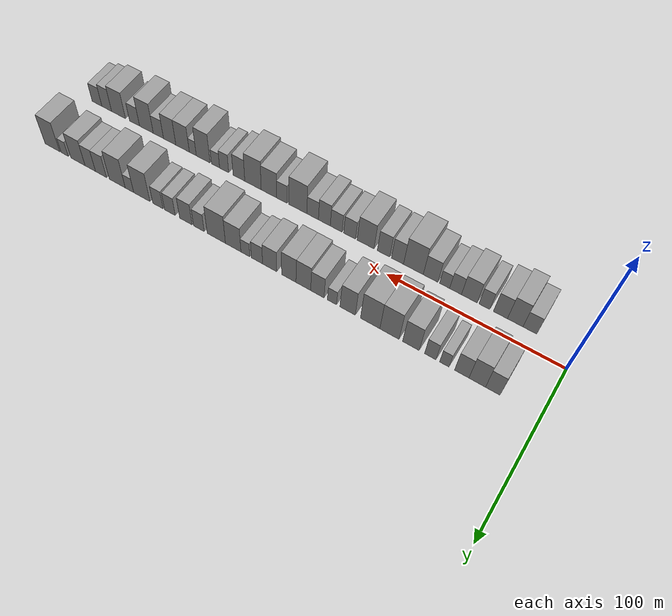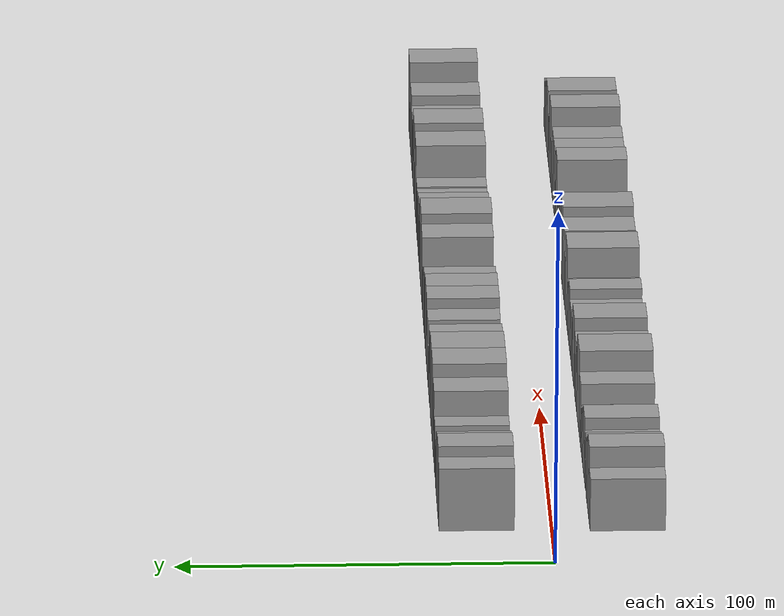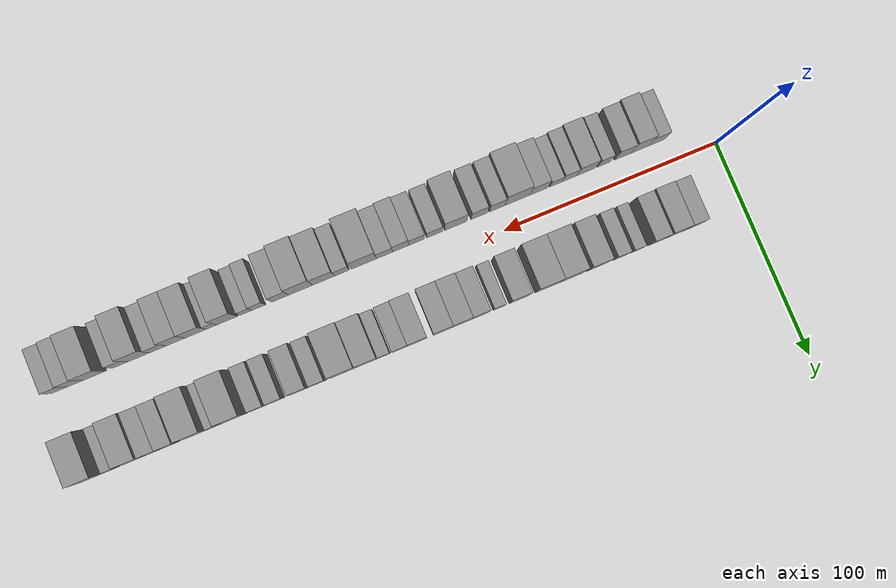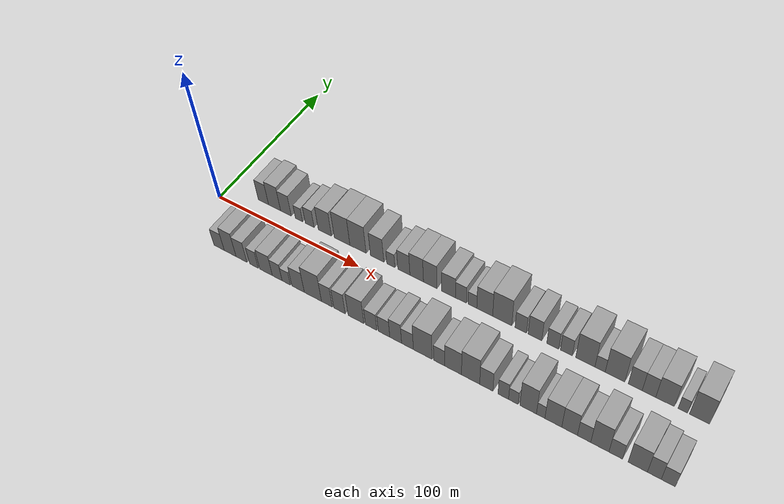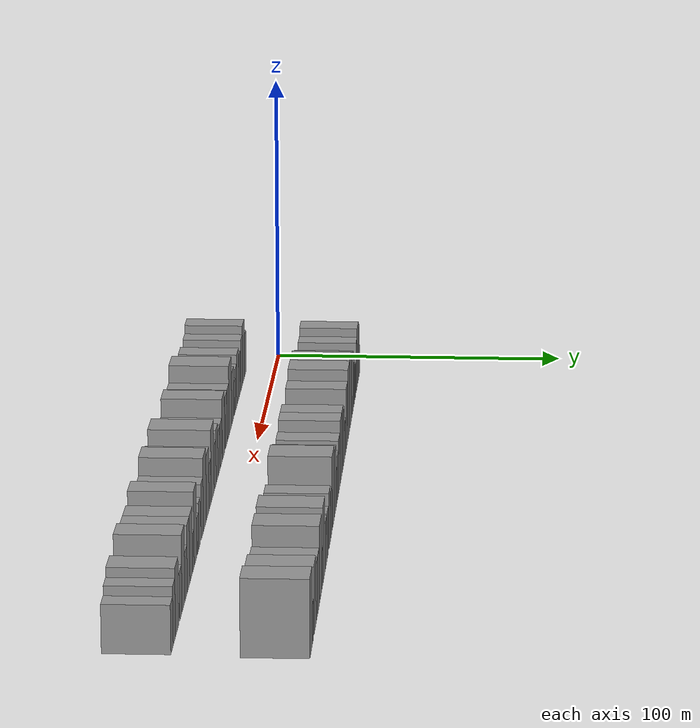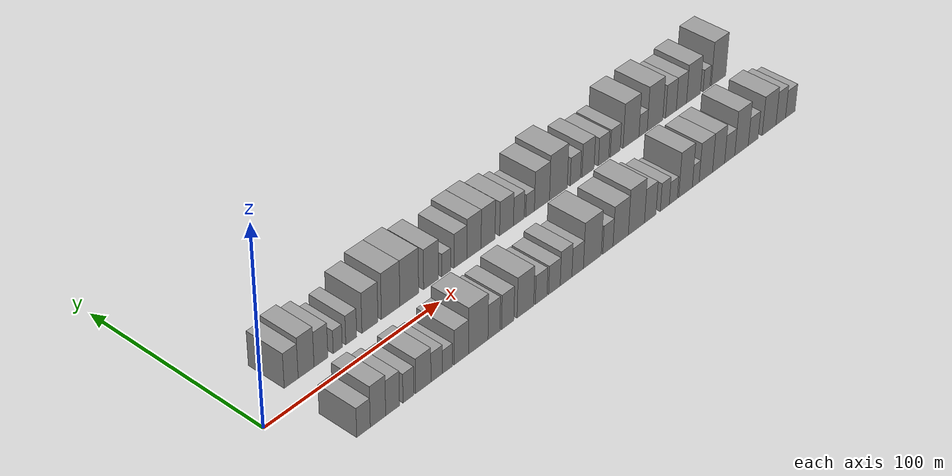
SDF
<sdf version="1.6">
 <world name="default">
  <scene>
   <sky><clouds><speed>12</speed></clouds></sky>
   <ambient>0.4 0.4 0.4 1</ambient>
   <background>0.7 0.7 0.7 1</background>
   <shadows>1</shadows>
  </scene>
  <gravity>0 0 -9.8066</gravity>
  <magnetic_field>6e-06 2.3e-05 -4.2e-05</magnetic_field>
  <physics default="0" name="default_physics" type="ode">
   <ode>
    <solver>
     <type>quick</type>
     <iters>10</iters>
     <sor>1.0</sor>
     <use_dynamic_moi_rescaling>0</use_dynamic_moi_rescaling>
    </solver>
    <constraints>
     <cfm>0</cfm>
     <erp>0.2</erp>
     <contact_max_correcting_vel>100</contact_max_correcting_vel>
     <contact_surface_layer>0.001</contact_surface_layer>
    </constraints>
   </ode>
   <max_step_size>0.004</max_step_size>
   <real_time_factor>1</real_time_factor>
   <real_time_update_rate>250</real_time_update_rate>
  </physics>
  <light name="sun" type="directional">
   <pose>0 0 10 0 0 0</pose>
   <diffuse>0.8 0.8 0.8 1</diffuse>
   <specular>0.2 0.2 0.2 1</specular>
   <attenuation>
    <range>1000</range>
    <constant>0.9</constant>
    <linear>0.01</linear>
    <quadratic>0.001</quadratic>
   </attenuation>
   <direction>-0.5 0.1 -0.9</direction>
  </light>
  <model name="building_1">
   <static>1</static>
   <pose>24.8415 20.0000 0 0.000000 0.000000 1.570796</pose>
   <link name="link">
    <pose>0 0 9.00 0 0 0</pose>
    <collision name="collision"><geometry><box><size>20.0000 7.6830 18.0000</size></box></geometry></collision>
    <visual name="visual">
     <cast_shadows>0</cast_shadows>
     <geometry><box><size>20.0000 7.6830 18.0000</size></box></geometry>
     <material>
      <script>
       <uri>model://grey_wall/materials/scripts</uri>
       <uri>model://grey_wall/materials/textures</uri>
       <name>vrc/grey_wall</name>
      </script>
     </material>
    </visual>
   </link>
  </model>
  <model name="building_2">
   <static>1</static>
   <pose>33.1000 20.0000 0 0.000000 0.000000 1.570796</pose>
   <link name="link">
    <pose>0 0 10.50 0 0 0</pose>
    <collision name="collision"><geometry><box><size>20.0000 8.8340 21.0000</size></box></geometry></collision>
    <visual name="visual">
     <cast_shadows>0</cast_shadows>
     <geometry><box><size>20.0000 8.8340 21.0000</size></box></geometry>
     <material>
      <script>
       <uri>model://grey_wall/materials/scripts</uri>
       <uri>model://grey_wall/materials/textures</uri>
       <name>vrc/grey_wall</name>
      </script>
     </material>
    </visual>
   </link>
  </model>
  <model name="building_3">
   <static>1</static>
   <pose>41.4182 20.0000 0 0.000000 0.000000 1.570796</pose>
   <link name="link">
    <pose>0 0 9.00 0 0 0</pose>
    <collision name="collision"><geometry><box><size>20.0000 7.8023 18.0000</size></box></geometry></collision>
    <visual name="visual">
     <cast_shadows>0</cast_shadows>
     <geometry><box><size>20.0000 7.8023 18.0000</size></box></geometry>
     <material>
      <script>
       <uri>model://grey_wall/materials/scripts</uri>
       <uri>model://grey_wall/materials/textures</uri>
       <name>vrc/grey_wall</name>
      </script>
     </material>
    </visual>
   </link>
  </model>
  <model name="building_4">
   <static>1</static>
   <pose>50.8938 20.0000 0 0.000000 0.000000 1.570796</pose>
   <link name="link">
    <pose>0 0 6.00 0 0 0</pose>
    <collision name="collision"><geometry><box><size>20.0000 5.1490 12.0000</size></box></geometry></collision>
    <visual name="visual">
     <cast_shadows>0</cast_shadows>
     <geometry><box><size>20.0000 5.1490 12.0000</size></box></geometry>
     <material>
      <script>
       <uri>model://grey_wall/materials/scripts</uri>
       <uri>model://grey_wall/materials/textures</uri>
       <name>vrc/grey_wall</name>
      </script>
     </material>
    </visual>
   </link>
  </model>
  <model name="building_5">
   <static>1</static>
   <pose>58.6183 20.0000 0 0.000000 0.000000 1.570796</pose>
   <link name="link">
    <pose>0 0 7.50 0 0 0</pose>
    <collision name="collision"><geometry><box><size>20.0000 6.2999 15.0000</size></box></geometry></collision>
    <visual name="visual">
     <cast_shadows>0</cast_shadows>
     <geometry><box><size>20.0000 6.2999 15.0000</size></box></geometry>
     <material>
      <script>
       <uri>model://grey_wall/materials/scripts</uri>
       <uri>model://grey_wall/materials/textures</uri>
       <name>vrc/grey_wall</name>
      </script>
     </material>
    </visual>
   </link>
  </model>
  <model name="building_6">
   <static>1</static>
   <pose>69.4453 20.0000 0 0.000000 0.000000 1.570796</pose>
   <link name="link">
    <pose>0 0 10.50 0 0 0</pose>
    <collision name="collision"><geometry><box><size>20.0000 9.3541 21.0000</size></box></geometry></collision>
    <visual name="visual">
     <cast_shadows>0</cast_shadows>
     <geometry><box><size>20.0000 9.3541 21.0000</size></box></geometry>
     <material>
      <script>
       <uri>model://grey_wall/materials/scripts</uri>
       <uri>model://grey_wall/materials/textures</uri>
       <name>vrc/grey_wall</name>
      </script>
     </material>
    </visual>
   </link>
  </model>
  <model name="building_7">
   <static>1</static>
   <pose>81.5799 20.0000 0 0.000000 0.000000 1.570796</pose>
   <link name="link">
    <pose>0 0 12.00 0 0 0</pose>
    <collision name="collision"><geometry><box><size>20.0000 10.9151 24.0000</size></box></geometry></collision>
    <visual name="visual">
     <cast_shadows>0</cast_shadows>
     <geometry><box><size>20.0000 10.9151 24.0000</size></box></geometry>
     <material>
      <script>
       <uri>model://grey_wall/materials/scripts</uri>
       <uri>model://grey_wall/materials/textures</uri>
       <name>vrc/grey_wall</name>
      </script>
     </material>
    </visual>
   </link>
  </model>
  <model name="building_8">
   <static>1</static>
   <pose>92.6575 20.0000 0 0.000000 0.000000 1.570796</pose>
   <link name="link">
    <pose>0 0 12.00 0 0 0</pose>
    <collision name="collision"><geometry><box><size>20.0000 11.2401 24.0000</size></box></geometry></collision>
    <visual name="visual">
     <cast_shadows>0</cast_shadows>
     <geometry><box><size>20.0000 11.2401 24.0000</size></box></geometry>
     <material>
      <script>
       <uri>model://grey_wall/materials/scripts</uri>
       <uri>model://grey_wall/materials/textures</uri>
       <name>vrc/grey_wall</name>
      </script>
     </material>
    </visual>
   </link>
  </model>
  <model name="building_9">
   <static>1</static>
   <pose>105.8259 20.0000 0 0.000000 0.000000 1.570796</pose>
   <link name="link">
    <pose>0 0 10.50 0 0 0</pose>
    <collision name="collision"><geometry><box><size>20.0000 9.0966 21.0000</size></box></geometry></collision>
    <visual name="visual">
     <cast_shadows>0</cast_shadows>
     <geometry><box><size>20.0000 9.0966 21.0000</size></box></geometry>
     <material>
      <script>
       <uri>model://grey_wall/materials/scripts</uri>
       <uri>model://grey_wall/materials/textures</uri>
       <name>vrc/grey_wall</name>
      </script>
     </material>
    </visual>
   </link>
  </model>
  <model name="building_10">
   <static>1</static>
   <pose>115.0987 20.0000 0 0.000000 0.000000 1.570796</pose>
   <link name="link">
    <pose>0 0 6.00 0 0 0</pose>
    <collision name="collision"><geometry><box><size>20.0000 5.4492 12.0000</size></box></geometry></collision>
    <visual name="visual">
     <cast_shadows>0</cast_shadows>
     <geometry><box><size>20.0000 5.4492 12.0000</size></box></geometry>
     <material>
      <script>
       <uri>model://grey_wall/materials/scripts</uri>
       <uri>model://grey_wall/materials/textures</uri>
       <name>vrc/grey_wall</name>
      </script>
     </material>
    </visual>
   </link>
  </model>
  <model name="building_11">
   <static>1</static>
   <pose>123.8498 20.0000 0 0.000000 0.000000 1.570796</pose>
   <link name="link">
    <pose>0 0 9.00 0 0 0</pose>
    <collision name="collision"><geometry><box><size>20.0000 8.0529 18.0000</size></box></geometry></collision>
    <visual name="visual">
     <cast_shadows>0</cast_shadows>
     <geometry><box><size>20.0000 8.0529 18.0000</size></box></geometry>
     <material>
      <script>
       <uri>model://grey_wall/materials/scripts</uri>
       <uri>model://grey_wall/materials/textures</uri>
       <name>vrc/grey_wall</name>
      </script>
     </material>
    </visual>
   </link>
  </model>
  <model name="building_12">
   <static>1</static>
   <pose>132.3652 20.0000 0 0.000000 0.000000 1.570796</pose>
   <link name="link">
    <pose>0 0 10.50 0 0 0</pose>
    <collision name="collision"><geometry><box><size>20.0000 8.9779 21.0000</size></box></geometry></collision>
    <visual name="visual">
     <cast_shadows>0</cast_shadows>
     <geometry><box><size>20.0000 8.9779 21.0000</size></box></geometry>
     <material>
      <script>
       <uri>model://grey_wall/materials/scripts</uri>
       <uri>model://grey_wall/materials/textures</uri>
       <name>vrc/grey_wall</name>
      </script>
     </material>
    </visual>
   </link>
  </model>
  <model name="building_13">
   <static>1</static>
   <pose>141.2884 20.0000 0 0.000000 0.000000 1.570796</pose>
   <link name="link">
    <pose>0 0 10.50 0 0 0</pose>
    <collision name="collision"><geometry><box><size>20.0000 8.8684 21.0000</size></box></geometry></collision>
    <visual name="visual">
     <cast_shadows>0</cast_shadows>
     <geometry><box><size>20.0000 8.8684 21.0000</size></box></geometry>
     <material>
      <script>
       <uri>model://grey_wall/materials/scripts</uri>
       <uri>model://grey_wall/materials/textures</uri>
       <name>vrc/grey_wall</name>
      </script>
     </material>
    </visual>
   </link>
  </model>
  <model name="building_14">
   <static>1</static>
   <pose>153.1713 20.0000 0 0.000000 0.000000 1.570796</pose>
   <link name="link">
    <pose>0 0 9.00 0 0 0</pose>
    <collision name="collision"><geometry><box><size>20.0000 8.8973 18.0000</size></box></geometry></collision>
    <visual name="visual">
     <cast_shadows>0</cast_shadows>
     <geometry><box><size>20.0000 8.8973 18.0000</size></box></geometry>
     <material>
      <script>
       <uri>model://grey_wall/materials/scripts</uri>
       <uri>model://grey_wall/materials/textures</uri>
       <name>vrc/grey_wall</name>
      </script>
     </material>
    </visual>
   </link>
  </model>
  <model name="building_15">
   <static>1</static>
   <pose>161.1512 20.0000 0 0.000000 0.000000 1.570796</pose>
   <link name="link">
    <pose>0 0 7.50 0 0 0</pose>
    <collision name="collision"><geometry><box><size>20.0000 7.0626 15.0000</size></box></geometry></collision>
    <visual name="visual">
     <cast_shadows>0</cast_shadows>
     <geometry><box><size>20.0000 7.0626 15.0000</size></box></geometry>
     <material>
      <script>
       <uri>model://grey_wall/materials/scripts</uri>
       <uri>model://grey_wall/materials/textures</uri>
       <name>vrc/grey_wall</name>
      </script>
     </material>
    </visual>
   </link>
  </model>
  <model name="building_16">
   <static>1</static>
   <pose>168.5036 20.0000 0 0.000000 0.000000 1.570796</pose>
   <link name="link">
    <pose>0 0 6.00 0 0 0</pose>
    <collision name="collision"><geometry><box><size>20.0000 5.6421 12.0000</size></box></geometry></collision>
    <visual name="visual">
     <cast_shadows>0</cast_shadows>
     <geometry><box><size>20.0000 5.6421 12.0000</size></box></geometry>
     <material>
      <script>
       <uri>model://grey_wall/materials/scripts</uri>
       <uri>model://grey_wall/materials/textures</uri>
       <name>vrc/grey_wall</name>
      </script>
     </material>
    </visual>
   </link>
  </model>
  <model name="building_17">
   <static>1</static>
   <pose>176.3258 20.0000 0 0.000000 0.000000 1.570796</pose>
   <link name="link">
    <pose>0 0 10.50 0 0 0</pose>
    <collision name="collision"><geometry><box><size>20.0000 10.0022 21.0000</size></box></geometry></collision>
    <visual name="visual">
     <cast_shadows>0</cast_shadows>
     <geometry><box><size>20.0000 10.0022 21.0000</size></box></geometry>
     <material>
      <script>
       <uri>model://grey_wall/materials/scripts</uri>
       <uri>model://grey_wall/materials/textures</uri>
       <name>vrc/grey_wall</name>
      </script>
     </material>
    </visual>
   </link>
  </model>
  <model name="building_18">
   <static>1</static>
   <pose>187.2742 20.0000 0 0.000000 0.000000 1.570796</pose>
   <link name="link">
    <pose>0 0 12.00 0 0 0</pose>
    <collision name="collision"><geometry><box><size>20.0000 11.8946 24.0000</size></box></geometry></collision>
    <visual name="visual">
     <cast_shadows>0</cast_shadows>
     <geometry><box><size>20.0000 11.8946 24.0000</size></box></geometry>
     <material>
      <script>
       <uri>model://grey_wall/materials/scripts</uri>
       <uri>model://grey_wall/materials/textures</uri>
       <name>vrc/grey_wall</name>
      </script>
     </material>
    </visual>
   </link>
  </model>
  <model name="building_19">
   <static>1</static>
   <pose>198.7314 20.0000 0 0.000000 0.000000 1.570796</pose>
   <link name="link">
    <pose>0 0 7.50 0 0 0</pose>
    <collision name="collision"><geometry><box><size>20.0000 7.0198 15.0000</size></box></geometry></collision>
    <visual name="visual">
     <cast_shadows>0</cast_shadows>
     <geometry><box><size>20.0000 7.0198 15.0000</size></box></geometry>
     <material>
      <script>
       <uri>model://grey_wall/materials/scripts</uri>
       <uri>model://grey_wall/materials/textures</uri>
       <name>vrc/grey_wall</name>
      </script>
     </material>
    </visual>
   </link>
  </model>
  <model name="building_20">
   <static>1</static>
   <pose>207.4007 20.0000 0 0.000000 0.000000 1.570796</pose>
   <link name="link">
    <pose>0 0 9.00 0 0 0</pose>
    <collision name="collision"><geometry><box><size>20.0000 8.3186 18.0000</size></box></geometry></collision>
    <visual name="visual">
     <cast_shadows>0</cast_shadows>
     <geometry><box><size>20.0000 8.3186 18.0000</size></box></geometry>
     <material>
      <script>
       <uri>model://grey_wall/materials/scripts</uri>
       <uri>model://grey_wall/materials/textures</uri>
       <name>vrc/grey_wall</name>
      </script>
     </material>
    </visual>
   </link>
  </model>
  <model name="building_21">
   <static>1</static>
   <pose>218.1752 20.0000 0 0.000000 0.000000 1.570796</pose>
   <link name="link">
    <pose>0 0 7.50 0 0 0</pose>
    <collision name="collision"><geometry><box><size>20.0000 7.2304 15.0000</size></box></geometry></collision>
    <visual name="visual">
     <cast_shadows>0</cast_shadows>
     <geometry><box><size>20.0000 7.2304 15.0000</size></box></geometry>
     <material>
      <script>
       <uri>model://grey_wall/materials/scripts</uri>
       <uri>model://grey_wall/materials/textures</uri>
       <name>vrc/grey_wall</name>
      </script>
     </material>
    </visual>
   </link>
  </model>
  <model name="building_22">
   <static>1</static>
   <pose>226.3134 20.0000 0 0.000000 0.000000 1.570796</pose>
   <link name="link">
    <pose>0 0 7.50 0 0 0</pose>
    <collision name="collision"><geometry><box><size>20.0000 7.0461 15.0000</size></box></geometry></collision>
    <visual name="visual">
     <cast_shadows>0</cast_shadows>
     <geometry><box><size>20.0000 7.0461 15.0000</size></box></geometry>
     <material>
      <script>
       <uri>model://grey_wall/materials/scripts</uri>
       <uri>model://grey_wall/materials/textures</uri>
       <name>vrc/grey_wall</name>
      </script>
     </material>
    </visual>
   </link>
  </model>
  <model name="building_23">
   <static>1</static>
   <pose>237.4874 20.0000 0 0.000000 0.000000 1.570796</pose>
   <link name="link">
    <pose>0 0 12.00 0 0 0</pose>
    <collision name="collision"><geometry><box><size>20.0000 11.3018 24.0000</size></box></geometry></collision>
    <visual name="visual">
     <cast_shadows>0</cast_shadows>
     <geometry><box><size>20.0000 11.3018 24.0000</size></box></geometry>
     <material>
      <script>
       <uri>model://grey_wall/materials/scripts</uri>
       <uri>model://grey_wall/materials/textures</uri>
       <name>vrc/grey_wall</name>
      </script>
     </material>
    </visual>
   </link>
  </model>
  <model name="building_24">
   <static>1</static>
   <pose>246.1157 20.0000 0 0.000000 0.000000 1.570796</pose>
   <link name="link">
    <pose>0 0 6.00 0 0 0</pose>
    <collision name="collision"><geometry><box><size>20.0000 5.9548 12.0000</size></box></geometry></collision>
    <visual name="visual">
     <cast_shadows>0</cast_shadows>
     <geometry><box><size>20.0000 5.9548 12.0000</size></box></geometry>
     <material>
      <script>
       <uri>model://grey_wall/materials/scripts</uri>
       <uri>model://grey_wall/materials/textures</uri>
       <name>vrc/grey_wall</name>
      </script>
     </material>
    </visual>
   </link>
  </model>
  <model name="building_25">
   <static>1</static>
   <pose>254.7373 20.0000 0 0.000000 0.000000 1.570796</pose>
   <link name="link">
    <pose>0 0 12.00 0 0 0</pose>
    <collision name="collision"><geometry><box><size>20.0000 11.2885 24.0000</size></box></geometry></collision>
    <visual name="visual">
     <cast_shadows>0</cast_shadows>
     <geometry><box><size>20.0000 11.2885 24.0000</size></box></geometry>
     <material>
      <script>
       <uri>model://grey_wall/materials/scripts</uri>
       <uri>model://grey_wall/materials/textures</uri>
       <name>vrc/grey_wall</name>
      </script>
     </material>
    </visual>
   </link>
  </model>
  <model name="building_26">
   <static>1</static>
   <pose>266.3388 20.0000 0 0.000000 0.000000 1.570796</pose>
   <link name="link">
    <pose>0 0 9.00 0 0 0</pose>
    <collision name="collision"><geometry><box><size>20.0000 7.9144 18.0000</size></box></geometry></collision>
    <visual name="visual">
     <cast_shadows>0</cast_shadows>
     <geometry><box><size>20.0000 7.9144 18.0000</size></box></geometry>
     <material>
      <script>
       <uri>model://grey_wall/materials/scripts</uri>
       <uri>model://grey_wall/materials/textures</uri>
       <name>vrc/grey_wall</name>
      </script>
     </material>
    </visual>
   </link>
  </model>
  <model name="building_27">
   <static>1</static>
   <pose>274.0850 20.0000 0 0.000000 0.000000 1.570796</pose>
   <link name="link">
    <pose>0 0 9.00 0 0 0</pose>
    <collision name="collision"><geometry><box><size>20.0000 7.5781 18.0000</size></box></geometry></collision>
    <visual name="visual">
     <cast_shadows>0</cast_shadows>
     <geometry><box><size>20.0000 7.5781 18.0000</size></box></geometry>
     <material>
      <script>
       <uri>model://grey_wall/materials/scripts</uri>
       <uri>model://grey_wall/materials/textures</uri>
       <name>vrc/grey_wall</name>
      </script>
     </material>
    </visual>
   </link>
  </model>
  <model name="building_28">
   <static>1</static>
   <pose>283.0653 20.0000 0 0.000000 0.000000 1.570796</pose>
   <link name="link">
    <pose>0 0 10.50 0 0 0</pose>
    <collision name="collision"><geometry><box><size>20.0000 10.3824 21.0000</size></box></geometry></collision>
    <visual name="visual">
     <cast_shadows>0</cast_shadows>
     <geometry><box><size>20.0000 10.3824 21.0000</size></box></geometry>
     <material>
      <script>
       <uri>model://grey_wall/materials/scripts</uri>
       <uri>model://grey_wall/materials/textures</uri>
       <name>vrc/grey_wall</name>
      </script>
     </material>
    </visual>
   </link>
  </model>
  <model name="building_29">
   <static>1</static>
   <pose>292.8766 20.0000 0 0.000000 0.000000 1.570796</pose>
   <link name="link">
    <pose>0 0 6.00 0 0 0</pose>
    <collision name="collision"><geometry><box><size>20.0000 5.2401 12.0000</size></box></geometry></collision>
    <visual name="visual">
     <cast_shadows>0</cast_shadows>
     <geometry><box><size>20.0000 5.2401 12.0000</size></box></geometry>
     <material>
      <script>
       <uri>model://grey_wall/materials/scripts</uri>
       <uri>model://grey_wall/materials/textures</uri>
       <name>vrc/grey_wall</name>
      </script>
     </material>
    </visual>
   </link>
  </model>
  <model name="building_30">
   <static>1</static>
   <pose>302.0170 20.0000 0 0.000000 0.000000 1.570796</pose>
   <link name="link">
    <pose>0 0 12.00 0 0 0</pose>
    <collision name="collision"><geometry><box><size>20.0000 11.0407 24.0000</size></box></geometry></collision>
    <visual name="visual">
     <cast_shadows>0</cast_shadows>
     <geometry><box><size>20.0000 11.0407 24.0000</size></box></geometry>
     <material>
      <script>
       <uri>model://grey_wall/materials/scripts</uri>
       <uri>model://grey_wall/materials/textures</uri>
       <name>vrc/grey_wall</name>
      </script>
     </material>
    </visual>
   </link>
  </model>
  <model name="building_31">
   <static>1</static>
   <pose>23.7424 -20.0000 0 0.000000 0.000000 1.570796</pose>
   <link name="link">
    <pose>0 0 7.50 0 0 0</pose>
    <collision name="collision"><geometry><box><size>20.0000 7.4848 15.0000</size></box></geometry></collision>
    <visual name="visual">
     <cast_shadows>0</cast_shadows>
     <geometry><box><size>20.0000 7.4848 15.0000</size></box></geometry>
     <material>
      <script>
       <uri>model://grey_wall/materials/scripts</uri>
       <uri>model://grey_wall/materials/textures</uri>
       <name>vrc/grey_wall</name>
      </script>
     </material>
    </visual>
   </link>
  </model>
  <model name="building_32">
   <static>1</static>
   <pose>31.7715 -20.0000 0 0.000000 0.000000 1.570796</pose>
   <link name="link">
    <pose>0 0 10.50 0 0 0</pose>
    <collision name="collision"><geometry><box><size>20.0000 8.5735 21.0000</size></box></geometry></collision>
    <visual name="visual">
     <cast_shadows>0</cast_shadows>
     <geometry><box><size>20.0000 8.5735 21.0000</size></box></geometry>
     <material>
      <script>
       <uri>model://grey_wall/materials/scripts</uri>
       <uri>model://grey_wall/materials/textures</uri>
       <name>vrc/grey_wall</name>
      </script>
     </material>
    </visual>
   </link>
  </model>
  <model name="building_33">
   <static>1</static>
   <pose>39.9363 -20.0000 0 0.000000 0.000000 1.570796</pose>
   <link name="link">
    <pose>0 0 9.00 0 0 0</pose>
    <collision name="collision"><geometry><box><size>20.0000 7.7562 18.0000</size></box></geometry></collision>
    <visual name="visual">
     <cast_shadows>0</cast_shadows>
     <geometry><box><size>20.0000 7.7562 18.0000</size></box></geometry>
     <material>
      <script>
       <uri>model://grey_wall/materials/scripts</uri>
       <uri>model://grey_wall/materials/textures</uri>
       <name>vrc/grey_wall</name>
      </script>
     </material>
    </visual>
   </link>
  </model>
  <model name="building_34">
   <static>1</static>
   <pose>48.8727 -20.0000 0 0.000000 0.000000 1.570796</pose>
   <link name="link">
    <pose>0 0 7.50 0 0 0</pose>
    <collision name="collision"><geometry><box><size>20.0000 6.1164 15.0000</size></box></geometry></collision>
    <visual name="visual">
     <cast_shadows>0</cast_shadows>
     <geometry><box><size>20.0000 6.1164 15.0000</size></box></geometry>
     <material>
      <script>
       <uri>model://grey_wall/materials/scripts</uri>
       <uri>model://grey_wall/materials/textures</uri>
       <name>vrc/grey_wall</name>
      </script>
     </material>
    </visual>
   </link>
  </model>
  <model name="building_35">
   <static>1</static>
   <pose>57.3761 -20.0000 0 0.000000 0.000000 1.570796</pose>
   <link name="link">
    <pose>0 0 9.00 0 0 0</pose>
    <collision name="collision"><geometry><box><size>20.0000 8.8905 18.0000</size></box></geometry></collision>
    <visual name="visual">
     <cast_shadows>0</cast_shadows>
     <geometry><box><size>20.0000 8.8905 18.0000</size></box></geometry>
     <material>
      <script>
       <uri>model://grey_wall/materials/scripts</uri>
       <uri>model://grey_wall/materials/textures</uri>
       <name>vrc/grey_wall</name>
      </script>
     </material>
    </visual>
   </link>
  </model>
  <model name="building_36">
   <static>1</static>
   <pose>65.2077 -20.0000 0 0.000000 0.000000 1.570796</pose>
   <link name="link">
    <pose>0 0 7.50 0 0 0</pose>
    <collision name="collision"><geometry><box><size>20.0000 6.7727 15.0000</size></box></geometry></collision>
    <visual name="visual">
     <cast_shadows>0</cast_shadows>
     <geometry><box><size>20.0000 6.7727 15.0000</size></box></geometry>
     <material>
      <script>
       <uri>model://grey_wall/materials/scripts</uri>
       <uri>model://grey_wall/materials/textures</uri>
       <name>vrc/grey_wall</name>
      </script>
     </material>
    </visual>
   </link>
  </model>
  <model name="building_37">
   <static>1</static>
   <pose>71.4955 -20.0000 0 0.000000 0.000000 1.570796</pose>
   <link name="link">
    <pose>0 0 6.00 0 0 0</pose>
    <collision name="collision"><geometry><box><size>20.0000 5.8029 12.0000</size></box></geometry></collision>
    <visual name="visual">
     <cast_shadows>0</cast_shadows>
     <geometry><box><size>20.0000 5.8029 12.0000</size></box></geometry>
     <material>
      <script>
       <uri>model://grey_wall/materials/scripts</uri>
       <uri>model://grey_wall/materials/textures</uri>
       <name>vrc/grey_wall</name>
      </script>
     </material>
    </visual>
   </link>
  </model>
  <model name="building_38">
   <static>1</static>
   <pose>79.6754 -20.0000 0 0.000000 0.000000 1.570796</pose>
   <link name="link">
    <pose>0 0 9.00 0 0 0</pose>
    <collision name="collision"><geometry><box><size>20.0000 8.5568 18.0000</size></box></geometry></collision>
    <visual name="visual">
     <cast_shadows>0</cast_shadows>
     <geometry><box><size>20.0000 8.5568 18.0000</size></box></geometry>
     <material>
      <script>
       <uri>model://grey_wall/materials/scripts</uri>
       <uri>model://grey_wall/materials/textures</uri>
       <name>vrc/grey_wall</name>
      </script>
     </material>
    </visual>
   </link>
  </model>
  <model name="building_39">
   <static>1</static>
   <pose>89.7910 -20.0000 0 0.000000 0.000000 1.570796</pose>
   <link name="link">
    <pose>0 0 12.00 0 0 0</pose>
    <collision name="collision"><geometry><box><size>20.0000 11.6744 24.0000</size></box></geometry></collision>
    <visual name="visual">
     <cast_shadows>0</cast_shadows>
     <geometry><box><size>20.0000 11.6744 24.0000</size></box></geometry>
     <material>
      <script>
       <uri>model://grey_wall/materials/scripts</uri>
       <uri>model://grey_wall/materials/textures</uri>
       <name>vrc/grey_wall</name>
      </script>
     </material>
    </visual>
   </link>
  </model>
  <model name="building_40">
   <static>1</static>
   <pose>99.2472 -20.0000 0 0.000000 0.000000 1.570796</pose>
   <link name="link">
    <pose>0 0 9.00 0 0 0</pose>
    <collision name="collision"><geometry><box><size>20.0000 7.2381 18.0000</size></box></geometry></collision>
    <visual name="visual">
     <cast_shadows>0</cast_shadows>
     <geometry><box><size>20.0000 7.2381 18.0000</size></box></geometry>
     <material>
      <script>
       <uri>model://grey_wall/materials/scripts</uri>
       <uri>model://grey_wall/materials/textures</uri>
       <name>vrc/grey_wall</name>
      </script>
     </material>
    </visual>
   </link>
  </model>
  <model name="building_41">
   <static>1</static>
   <pose>107.6433 -20.0000 0 0.000000 0.000000 1.570796</pose>
   <link name="link">
    <pose>0 0 9.00 0 0 0</pose>
    <collision name="collision"><geometry><box><size>20.0000 7.5541 18.0000</size></box></geometry></collision>
    <visual name="visual">
     <cast_shadows>0</cast_shadows>
     <geometry><box><size>20.0000 7.5541 18.0000</size></box></geometry>
     <material>
      <script>
       <uri>model://grey_wall/materials/scripts</uri>
       <uri>model://grey_wall/materials/textures</uri>
       <name>vrc/grey_wall</name>
      </script>
     </material>
    </visual>
   </link>
  </model>
  <model name="building_42">
   <static>1</static>
   <pose>118.5934 -20.0000 0 0.000000 0.000000 1.570796</pose>
   <link name="link">
    <pose>0 0 10.50 0 0 0</pose>
    <collision name="collision"><geometry><box><size>20.0000 10.3460 21.0000</size></box></geometry></collision>
    <visual name="visual">
     <cast_shadows>0</cast_shadows>
     <geometry><box><size>20.0000 10.3460 21.0000</size></box></geometry>
     <material>
      <script>
       <uri>model://grey_wall/materials/scripts</uri>
       <uri>model://grey_wall/materials/textures</uri>
       <name>vrc/grey_wall</name>
      </script>
     </material>
    </visual>
   </link>
  </model>
  <model name="building_43">
   <static>1</static>
   <pose>128.4544 -20.0000 0 0.000000 0.000000 1.570796</pose>
   <link name="link">
    <pose>0 0 7.50 0 0 0</pose>
    <collision name="collision"><geometry><box><size>20.0000 7.3760 15.0000</size></box></geometry></collision>
    <visual name="visual">
     <cast_shadows>0</cast_shadows>
     <geometry><box><size>20.0000 7.3760 15.0000</size></box></geometry>
     <material>
      <script>
       <uri>model://grey_wall/materials/scripts</uri>
       <uri>model://grey_wall/materials/textures</uri>
       <name>vrc/grey_wall</name>
      </script>
     </material>
    </visual>
   </link>
  </model>
  <model name="building_44">
   <static>1</static>
   <pose>136.8361 -20.0000 0 0.000000 0.000000 1.570796</pose>
   <link name="link">
    <pose>0 0 7.50 0 0 0</pose>
    <collision name="collision"><geometry><box><size>20.0000 7.3875 15.0000</size></box></geometry></collision>
    <visual name="visual">
     <cast_shadows>0</cast_shadows>
     <geometry><box><size>20.0000 7.3875 15.0000</size></box></geometry>
     <material>
      <script>
       <uri>model://grey_wall/materials/scripts</uri>
       <uri>model://grey_wall/materials/textures</uri>
       <name>vrc/grey_wall</name>
      </script>
     </material>
    </visual>
   </link>
  </model>
  <model name="building_45">
   <static>1</static>
   <pose>144.2879 -20.0000 0 0.000000 0.000000 1.570796</pose>
   <link name="link">
    <pose>0 0 9.00 0 0 0</pose>
    <collision name="collision"><geometry><box><size>20.0000 7.5160 18.0000</size></box></geometry></collision>
    <visual name="visual">
     <cast_shadows>0</cast_shadows>
     <geometry><box><size>20.0000 7.5160 18.0000</size></box></geometry>
     <material>
      <script>
       <uri>model://grey_wall/materials/scripts</uri>
       <uri>model://grey_wall/materials/textures</uri>
       <name>vrc/grey_wall</name>
      </script>
     </material>
    </visual>
   </link>
  </model>
  <model name="building_46">
   <static>1</static>
   <pose>151.7782 -20.0000 0 0.000000 0.000000 1.570796</pose>
   <link name="link">
    <pose>0 0 7.50 0 0 0</pose>
    <collision name="collision"><geometry><box><size>20.0000 7.4645 15.0000</size></box></geometry></collision>
    <visual name="visual">
     <cast_shadows>0</cast_shadows>
     <geometry><box><size>20.0000 7.4645 15.0000</size></box></geometry>
     <material>
      <script>
       <uri>model://grey_wall/materials/scripts</uri>
       <uri>model://grey_wall/materials/textures</uri>
       <name>vrc/grey_wall</name>
      </script>
     </material>
    </visual>
   </link>
  </model>
  <model name="building_47">
   <static>1</static>
   <pose>161.3607 -20.0000 0 0.000000 0.000000 1.570796</pose>
   <link name="link">
    <pose>0 0 12.00 0 0 0</pose>
    <collision name="collision"><geometry><box><size>20.0000 11.7005 24.0000</size></box></geometry></collision>
    <visual name="visual">
     <cast_shadows>0</cast_shadows>
     <geometry><box><size>20.0000 11.7005 24.0000</size></box></geometry>
     <material>
      <script>
       <uri>model://grey_wall/materials/scripts</uri>
       <uri>model://grey_wall/materials/textures</uri>
       <name>vrc/grey_wall</name>
      </script>
     </material>
    </visual>
   </link>
  </model>
  <model name="building_48">
   <static>1</static>
   <pose>171.6164 -20.0000 0 0.000000 0.000000 1.570796</pose>
   <link name="link">
    <pose>0 0 7.50 0 0 0</pose>
    <collision name="collision"><geometry><box><size>20.0000 6.8110 15.0000</size></box></geometry></collision>
    <visual name="visual">
     <cast_shadows>0</cast_shadows>
     <geometry><box><size>20.0000 6.8110 15.0000</size></box></geometry>
     <material>
      <script>
       <uri>model://grey_wall/materials/scripts</uri>
       <uri>model://grey_wall/materials/textures</uri>
       <name>vrc/grey_wall</name>
      </script>
     </material>
    </visual>
   </link>
  </model>
  <model name="building_49">
   <static>1</static>
   <pose>180.1622 -20.0000 0 0.000000 0.000000 1.570796</pose>
   <link name="link">
    <pose>0 0 10.50 0 0 0</pose>
    <collision name="collision"><geometry><box><size>20.0000 10.2805 21.0000</size></box></geometry></collision>
    <visual name="visual">
     <cast_shadows>0</cast_shadows>
     <geometry><box><size>20.0000 10.2805 21.0000</size></box></geometry>
     <material>
      <script>
       <uri>model://grey_wall/materials/scripts</uri>
       <uri>model://grey_wall/materials/textures</uri>
       <name>vrc/grey_wall</name>
      </script>
     </material>
    </visual>
   </link>
  </model>
  <model name="building_50">
   <static>1</static>
   <pose>190.7911 -20.0000 0 0.000000 0.000000 1.570796</pose>
   <link name="link">
    <pose>0 0 12.00 0 0 0</pose>
    <collision name="collision"><geometry><box><size>20.0000 10.9774 24.0000</size></box></geometry></collision>
    <visual name="visual">
     <cast_shadows>0</cast_shadows>
     <geometry><box><size>20.0000 10.9774 24.0000</size></box></geometry>
     <material>
      <script>
       <uri>model://grey_wall/materials/scripts</uri>
       <uri>model://grey_wall/materials/textures</uri>
       <name>vrc/grey_wall</name>
      </script>
     </material>
    </visual>
   </link>
  </model>
  <model name="building_51">
   <static>1</static>
   <pose>200.2339 -20.0000 0 0.000000 0.000000 1.570796</pose>
   <link name="link">
    <pose>0 0 9.00 0 0 0</pose>
    <collision name="collision"><geometry><box><size>20.0000 7.9081 18.0000</size></box></geometry></collision>
    <visual name="visual">
     <cast_shadows>0</cast_shadows>
     <geometry><box><size>20.0000 7.9081 18.0000</size></box></geometry>
     <material>
      <script>
       <uri>model://grey_wall/materials/scripts</uri>
       <uri>model://grey_wall/materials/textures</uri>
       <name>vrc/grey_wall</name>
      </script>
     </material>
    </visual>
   </link>
  </model>
  <model name="building_52">
   <static>1</static>
   <pose>210.3014 -20.0000 0 0.000000 0.000000 1.570796</pose>
   <link name="link">
    <pose>0 0 7.50 0 0 0</pose>
    <collision name="collision"><geometry><box><size>20.0000 6.2269 15.0000</size></box></geometry></collision>
    <visual name="visual">
     <cast_shadows>0</cast_shadows>
     <geometry><box><size>20.0000 6.2269 15.0000</size></box></geometry>
     <material>
      <script>
       <uri>model://grey_wall/materials/scripts</uri>
       <uri>model://grey_wall/materials/textures</uri>
       <name>vrc/grey_wall</name>
      </script>
     </material>
    </visual>
   </link>
  </model>
  <model name="building_53">
   <static>1</static>
   <pose>216.2262 -20.0000 0 0.000000 0.000000 1.570796</pose>
   <link name="link">
    <pose>0 0 6.00 0 0 0</pose>
    <collision name="collision"><geometry><box><size>20.0000 5.6227 12.0000</size></box></geometry></collision>
    <visual name="visual">
     <cast_shadows>0</cast_shadows>
     <geometry><box><size>20.0000 5.6227 12.0000</size></box></geometry>
     <material>
      <script>
       <uri>model://grey_wall/materials/scripts</uri>
       <uri>model://grey_wall/materials/textures</uri>
       <name>vrc/grey_wall</name>
      </script>
     </material>
    </visual>
   </link>
  </model>
  <model name="building_54">
   <static>1</static>
   <pose>224.8408 -20.0000 0 0.000000 0.000000 1.570796</pose>
   <link name="link">
    <pose>0 0 12.00 0 0 0</pose>
    <collision name="collision"><geometry><box><size>20.0000 9.6065 24.0000</size></box></geometry></collision>
    <visual name="visual">
     <cast_shadows>0</cast_shadows>
     <geometry><box><size>20.0000 9.6065 24.0000</size></box></geometry>
     <material>
      <script>
       <uri>model://grey_wall/materials/scripts</uri>
       <uri>model://grey_wall/materials/textures</uri>
       <name>vrc/grey_wall</name>
      </script>
     </material>
    </visual>
   </link>
  </model>
  <model name="building_55">
   <static>1</static>
   <pose>232.0737 -20.0000 0 0.000000 0.000000 1.570796</pose>
   <link name="link">
    <pose>0 0 6.00 0 0 0</pose>
    <collision name="collision"><geometry><box><size>20.0000 4.8592 12.0000</size></box></geometry></collision>
    <visual name="visual">
     <cast_shadows>0</cast_shadows>
     <geometry><box><size>20.0000 4.8592 12.0000</size></box></geometry>
     <material>
      <script>
       <uri>model://grey_wall/materials/scripts</uri>
       <uri>model://grey_wall/materials/textures</uri>
       <name>vrc/grey_wall</name>
      </script>
     </material>
    </visual>
   </link>
  </model>
  <model name="building_56">
   <static>1</static>
   <pose>239.3090 -20.0000 0 0.000000 0.000000 1.570796</pose>
   <link name="link">
    <pose>0 0 10.50 0 0 0</pose>
    <collision name="collision"><geometry><box><size>20.0000 9.6114 21.0000</size></box></geometry></collision>
    <visual name="visual">
     <cast_shadows>0</cast_shadows>
     <geometry><box><size>20.0000 9.6114 21.0000</size></box></geometry>
     <material>
      <script>
       <uri>model://grey_wall/materials/scripts</uri>
       <uri>model://grey_wall/materials/textures</uri>
       <name>vrc/grey_wall</name>
      </script>
     </material>
    </visual>
   </link>
  </model>
  <model name="building_57">
   <static>1</static>
   <pose>248.5234 -20.0000 0 0.000000 0.000000 1.570796</pose>
   <link name="link">
    <pose>0 0 10.50 0 0 0</pose>
    <collision name="collision"><geometry><box><size>20.0000 8.8175 21.0000</size></box></geometry></collision>
    <visual name="visual">
     <cast_shadows>0</cast_shadows>
     <geometry><box><size>20.0000 8.8175 21.0000</size></box></geometry>
     <material>
      <script>
       <uri>model://grey_wall/materials/scripts</uri>
       <uri>model://grey_wall/materials/textures</uri>
       <name>vrc/grey_wall</name>
      </script>
     </material>
    </visual>
   </link>
  </model>
  <model name="building_58">
   <static>1</static>
   <pose>256.6451 -20.0000 0 0.000000 0.000000 1.570796</pose>
   <link name="link">
    <pose>0 0 7.50 0 0 0</pose>
    <collision name="collision"><geometry><box><size>20.0000 7.4259 15.0000</size></box></geometry></collision>
    <visual name="visual">
     <cast_shadows>0</cast_shadows>
     <geometry><box><size>20.0000 7.4259 15.0000</size></box></geometry>
     <material>
      <script>
       <uri>model://grey_wall/materials/scripts</uri>
       <uri>model://grey_wall/materials/textures</uri>
       <name>vrc/grey_wall</name>
      </script>
     </material>
    </visual>
   </link>
  </model>
  <model name="building_59">
   <static>1</static>
   <pose>265.3725 -20.0000 0 0.000000 0.000000 1.570796</pose>
   <link name="link">
    <pose>0 0 12.00 0 0 0</pose>
    <collision name="collision"><geometry><box><size>20.0000 10.0290 24.0000</size></box></geometry></collision>
    <visual name="visual">
     <cast_shadows>0</cast_shadows>
     <geometry><box><size>20.0000 10.0290 24.0000</size></box></geometry>
     <material>
      <script>
       <uri>model://grey_wall/materials/scripts</uri>
       <uri>model://grey_wall/materials/textures</uri>
       <name>vrc/grey_wall</name>
      </script>
     </material>
    </visual>
   </link>
  </model>
  <model name="building_60">
   <static>1</static>
   <pose>274.1003 -20.0000 0 0.000000 0.000000 1.570796</pose>
   <link name="link">
    <pose>0 0 7.50 0 0 0</pose>
    <collision name="collision"><geometry><box><size>20.0000 7.4266 15.0000</size></box></geometry></collision>
    <visual name="visual">
     <cast_shadows>0</cast_shadows>
     <geometry><box><size>20.0000 7.4266 15.0000</size></box></geometry>
     <material>
      <script>
       <uri>model://grey_wall/materials/scripts</uri>
       <uri>model://grey_wall/materials/textures</uri>
       <name>vrc/grey_wall</name>
      </script>
     </material>
    </visual>
   </link>
  </model>
  <model name="building_61">
   <static>1</static>
   <pose>286.0223 -20.0000 0 0.000000 0.000000 1.570796</pose>
   <link name="link">
    <pose>0 0 10.50 0 0 0</pose>
    <collision name="collision"><geometry><box><size>20.0000 10.4173 21.0000</size></box></geometry></collision>
    <visual name="visual">
     <cast_shadows>0</cast_shadows>
     <geometry><box><size>20.0000 10.4173 21.0000</size></box></geometry>
     <material>
      <script>
       <uri>model://grey_wall/materials/scripts</uri>
       <uri>model://grey_wall/materials/textures</uri>
       <name>vrc/grey_wall</name>
      </script>
     </material>
    </visual>
   </link>
  </model>
  <model name="building_62">
   <static>1</static>
   <pose>294.9037 -20.0000 0 0.000000 0.000000 1.570796</pose>
   <link name="link">
    <pose>0 0 9.00 0 0 0</pose>
    <collision name="collision"><geometry><box><size>20.0000 7.3454 18.0000</size></box></geometry></collision>
    <visual name="visual">
     <cast_shadows>0</cast_shadows>
     <geometry><box><size>20.0000 7.3454 18.0000</size></box></geometry>
     <material>
      <script>
       <uri>model://grey_wall/materials/scripts</uri>
       <uri>model://grey_wall/materials/textures</uri>
       <name>vrc/grey_wall</name>
      </script>
     </material>
    </visual>
   </link>
  </model>
  <model name="building_63">
   <static>1</static>
   <pose>302.2709 -20.0000 0 0.000000 0.000000 1.570796</pose>
   <link name="link">
    <pose>0 0 7.50 0 0 0</pose>
    <collision name="collision"><geometry><box><size>20.0000 7.3890 15.0000</size></box></geometry></collision>
    <visual name="visual">
     <cast_shadows>0</cast_shadows>
     <geometry><box><size>20.0000 7.3890 15.0000</size></box></geometry>
     <material>
      <script>
       <uri>model://grey_wall/materials/scripts</uri>
       <uri>model://grey_wall/materials/textures</uri>
       <name>vrc/grey_wall</name>
      </script>
     </material>
    </visual>
   </link>
  </model>
 </world>
</sdf>
